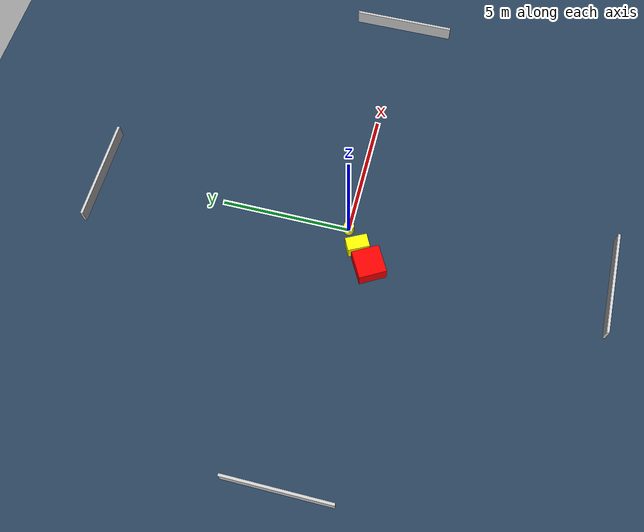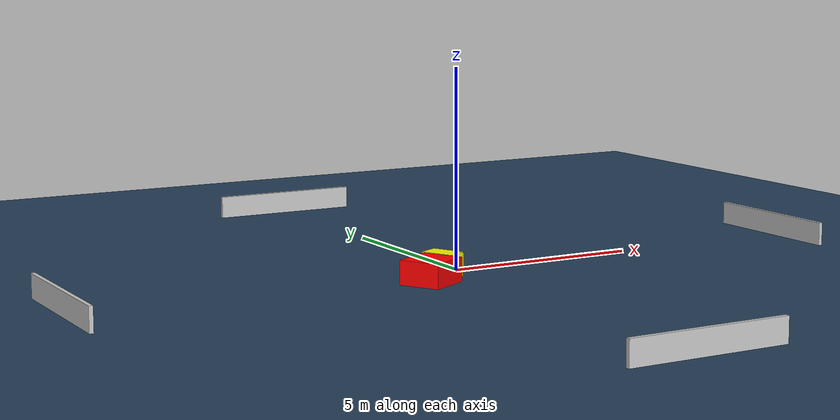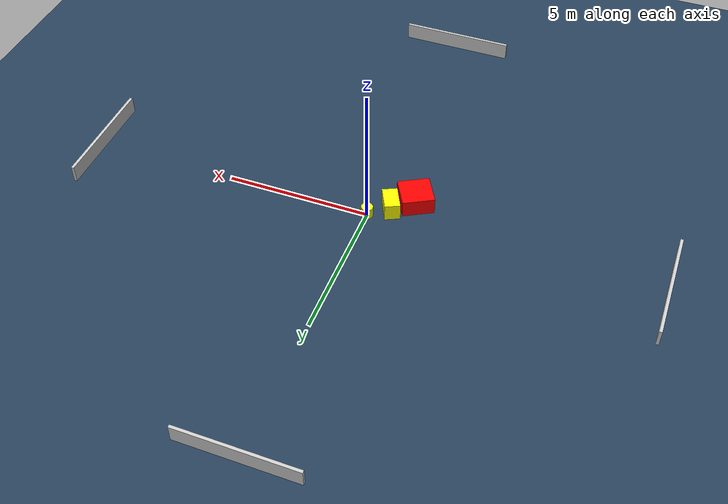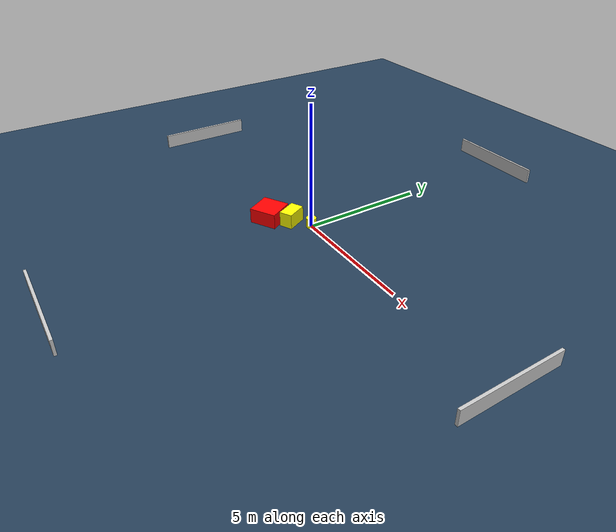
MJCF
<?xml version="1.0" ?>
<mujoco model="generated_environment">
  <option timestep="0.01" integrator="RK4" cone="elliptic"/>
  <default>
    <geom density="1"/>
  </default>
  <asset>
    <texture builtin="gradient" height="3072" name="skybox" rgb1="0.3 0.5 0.7" rgb2="0 0 0" type="skybox" width="512"/>
    <texture builtin="checker" height="300" name="groundplane" rgb1="0.2 0.3 0.4" rgb2="0.1 0.2 0.3" type="2d" width="300"/>
    <material name="groundplane" reflectance="0.2" texrepeat="5 5" texture="groundplane"/>
  </asset>
  <worldbody>
    <light dir="0 0 -1" directional="true" pos="0 0 1.5"/>
    <geom condim="3" friction="0.5 0.005 0.001" material="groundplane" name="floor" pos="0 0 0" size="0 0 0.05" type="plane"/>
    <body name="walls">
      <geom name="wall_1" condim="4" pos="-10.0 0.0 0.3" rgba="0.800000011920929 0.800000011920929 0.800000011920929 1.0" size="0.05 2.0 0.3" type="box"/>
      <geom name="wall_2" condim="4" pos="10.0 0.0 0.3" rgba="0.800000011920929 0.800000011920929 0.800000011920929 1.0" size="0.05 2.0 0.3" type="box"/>
      <geom name="wall_3" condim="4" pos="0.0 -10.0 0.3" rgba="0.800000011920929 0.800000011920929 0.800000011920929 1.0" size="2.0 0.05 0.3" type="box"/>
      <geom name="wall_4" condim="4" pos="0.0 10.0 0.3" rgba="0.800000011920929 0.800000011920929 0.800000011920929 1.0" size="2.0 0.05 0.3" type="box"/>
    </body>
    <body name="robot">
      <joint name="joint_x" type="slide" pos="0 0 0" axis="1 0 0"/>
      <joint name="joint_y" type="slide" pos="0 0 0" axis="0 1 0"/>
      <geom name="robot" type="cylinder" pos="0.0 0.0 0.2" size="0.2 0.2 0.0" mass="5.0" friction="1.0 0.005 0.0001" condim="4" rgba="1.0 1.0 0.0 1.0"/>
    </body>
    <body name="obstacle_1_movable">
      <geom name="obstacle_1_movable" condim="4" pos="-0.6651230048268024 -0.4929847205058434 0.3" euler="0 0 206.47816191530194" friction="0.0 0.005 0.001" rgba="1.0 1.0 0.0 1.0" size="0.26238616324333924 0.42157054169488395 0.3" type="box" mass="0.1"/>
      <joint type="free"/>
    </body>
    <body name="obstacle_2_static">
      <geom name="obstacle_2_static" condim="4" pos="-1.3323414728522867 -1.0971835321247667 0.3" euler="0 0 119.16723467292768" friction="0.0 0.005 0.001" rgba="1.0 0.0 0.0 1.0" size="0.530316541312023 0.5477449815047132 0.3" type="box"/>
    </body>
  </worldbody>
  <actuator>
    <motor name="actuator_x" joint="joint_x" gear="1" ctrlrange="-1 1"/>
    <motor name="actuator_y" joint="joint_y" gear="1" ctrlrange="-1 1"/>
  </actuator>
</mujoco>
